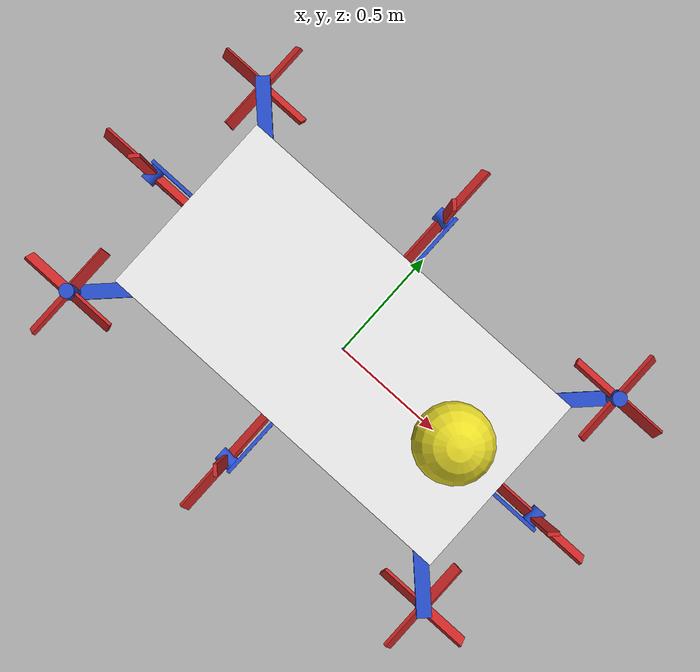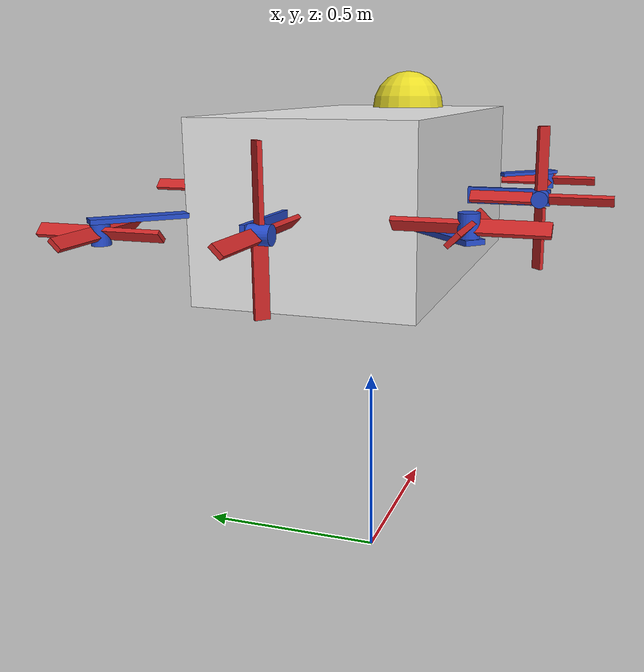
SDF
<?xml version="1.0"?>
<sdf version="1.5">

	<model name="Arihant_AUV">

		<!-- Define the initial pose of the AUV to start the simulation -->
		<pose>0 0 1 0 0 0</pose>

		<!-- Define the specifications of the Main Body of the AUV -->
		<link name = 'main_body'>
			<pose>0 0 0 0 0 0</pose>
            <inertial>
                <mass>900</mass>
                <inertia>
                    <ixx>86.28907821859966</ixx>
                    <ixy>0</ixy>
                    <ixz>0</ixz>
                    <iyy>86.28907821859966</iyy>
                    <iyz>0</iyz>
                    <izz>5.026548245743671</izz>
                </inertia>
            </inertial>

			<visual name = "main_body_visual">
				<geometry>
					<box>
						<size>1 0.5 0.4</size>
					</box>
				</geometry>
				<material>
					<script>
						<name>Gazebo/White</name>
					</script>
				</material>
			</visual>

			<collision name = "main_body_collision">
				<geometry>
					<box>
						<size>1.5 0.8 0.8</size>
					</box>
				</geometry>
			</collision>

			<!-- Propeller connector 1 -->
			<visual name = "spacer_1_forward_right_box">
				<pose>0 -0.35 0 0 0 -1.57</pose>
				<geometry>
					<box>
						<size>0.2 0.01 0.04</size>
					</box>
				</geometry>
				<material>
					<script>
						<name>Gazebo/Blue</name>
					</script>
				</material>
			</visual>
			<visual name = "spacer_1_forward_right_cyl">
				<pose>-0.025 -0.43 0 0 -1.57 0</pose>
				<geometry>
					<cylinder>
						<length>0.05</length>
						<radius>0.02</radius>
					</cylinder>
				</geometry>
				<material>
					<script>
						<name>Gazebo/Blue</name>
					</script>
				</material>
			</visual>

			<!-- Propeller connector 2 -->
			<visual name = "spacer_2_forward_left_box">
				<pose>0 0.35 0 0 0 -1.57</pose>
				<geometry>
					<box>
						<size>0.2 0.01 0.04</size>
					</box>
				</geometry>
				<material>
					<script>
						<name>Gazebo/Blue</name>
					</script>
				</material>
			</visual>
			<visual name = "spacer_2_forward_left_cyl">
				<pose>-0.025 0.43 0 0 -1.57 0</pose>
				<geometry>
					<cylinder>
						<length>0.05</length>
						<radius>0.02</radius>
					</cylinder>
				</geometry>
				<material>
					<script>
						<name>Gazebo/Blue</name>
					</script>
				</material>
			</visual>

			<!-- Propeller connector 3 -->
			<visual name = "spacer_3_left_box">
				<pose>-0.6 0.025 0 0 0 0</pose>
				<geometry>
					<box>
						<size>0.2 0.01 0.04</size>
					</box>
				</geometry>
				<material>
					<script>
						<name>Gazebo/Blue</name>
					</script>
				</material>
			</visual>
			<visual name = "spacer_3_left_cyl">
				<pose>-0.68 0 0 1.57 0 0</pose>
				<geometry>
					<cylinder>
						<length>0.05</length>
						<radius>0.02</radius>
					</cylinder>
				</geometry>
				<material>
					<script>
						<name>Gazebo/Blue</name>
					</script>
				</material>
			</visual>

			<!-- Propeller connector 4 -->
			<visual name = "spacer_4_right_box">
				<pose>0.6 -0.025 0 0 0 0</pose>
				<geometry>
					<box>
						<size>0.2 0.01 0.04</size>
					</box>
				</geometry>
				<material>
					<script>
						<name>Gazebo/Blue</name>
					</script>
				</material>
			</visual>
			<visual name = "spacer_4_right_cyl">
				<pose>0.68 0 0 -1.57 0 0</pose>
				<geometry>
					<cylinder>
						<length>0.05</length>
						<radius>0.02</radius>
					</cylinder>
				</geometry>
				<material>
					<script>
						<name>Gazebo/Blue</name>
					</script>
				</material>
			</visual>

			<!-- Propeller connector 5 -->
			<visual name = "spacer_5_up_NE_box">
				<pose>0.57 -0.32 0 1.57 0 -0.785</pose>
				<geometry>
					<box>
						<size>0.2 0.01 0.04</size>
					</box>
				</geometry>
				<material>
					<script>
						<name>Gazebo/Blue</name>
					</script>
				</material>
			</visual>
			<visual name = "spacer_5_up_NE_cyl">
				<pose>0.625 -0.375 -0.025 0 0 0</pose>
				<geometry>
					<cylinder>
						<length>0.05</length>
						<radius>0.02</radius>
					</cylinder>
				</geometry>
				<material>
					<script>
						<name>Gazebo/Blue</name>
					</script>
				</material>
			</visual>

			<!-- Propeller connector 6 -->
			<visual name = "spacer_6_up_SW_box">
				<pose>-0.57 0.32 0 1.57 0 -0.785</pose>
				<geometry>
					<box>
						<size>0.2 0.01 0.04</size>
					</box>
				</geometry>
				<material>
					<script>
						<name>Gazebo/Blue</name>
					</script>
				</material>
			</visual>
			<visual name = "spacer_6_up_SW_cyl">
				<pose>-0.625 0.375 -0.025 0 0 0</pose>
				<geometry>
					<cylinder>
						<length>0.05</length>
						<radius>0.02</radius>
					</cylinder>
				</geometry>
				<material>
					<script>
						<name>Gazebo/Blue</name>
					</script>
				</material>
			</visual>

			<!-- Propeller connector 7 -->
			<visual name = "spacer_7_down_NW_box">
				<pose>0.57 0.32 0 1.57 0 0.785</pose>
				<geometry>
					<box>
						<size>0.2 0.01 0.04</size>
					</box>
				</geometry>
				<material>
					<script>
						<name>Gazebo/Blue</name>
					</script>
				</material>
			</visual>
			<visual name = "spacer_7_down_NW_cyl">
				<pose>0.625 0.375 0.025 0 0 0</pose>
				<geometry>
					<cylinder>
						<length>0.05</length>
						<radius>0.02</radius>
					</cylinder>
				</geometry>
				<material>
					<script>
						<name>Gazebo/Blue</name>
					</script>
				</material>
			</visual>

			<!-- Propeller connector 8 -->
			<visual name = "spacer_8_down_SE_box">
				<pose>-0.57 -0.32 0 1.57 0 0.785</pose>
				<geometry>
					<box>
						<size>0.2 0.01 0.04</size>
					</box>
				</geometry>
				<material>
					<script>
						<name>Gazebo/Blue</name>
					</script>
				</material>
			</visual>
			<visual name = "spacer_8_down_SE_cyl">
				<pose>-0.625 -0.375 0.025 0 0 0</pose>
				<geometry>
					<cylinder>
						<length>0.05</length>
						<radius>0.02</radius>
					</cylinder>
				</geometry>
				<material>
					<script>
						<name>Gazebo/Blue</name>
					</script>
				</material>
			</visual>
		</link>

		<link name = "propeller_forward_right">
			<pose>-0.025 -0.43 0 0 0 0</pose>
			<inertial>
				<mass>10</mass>
				<inertia>
					<ixx>0.25999415237916674</ixx>
					<ixy>0</ixy>
					<ixz>0</ixz>
					<iyy>0.25999415237916674</iyy>
					<iyz>0</iyz>
					<izz>0.5091666666666668</izz>
				</inertia>
			</inertial>

			<visual name='blade1_visual'>
				<pose>0 -0.095 0 -0.785 0 1.5707</pose>
				<geometry>
					<box>
						<size>0.15 0.01 0.03</size>
					</box>
				</geometry>
				<material>
					<script>
						<name>Gazebo/Red</name>
					</script>
				</material>
			</visual>

			<collision name="blade1_collision">
				<pose>0 -0.095 0 -0.785 0 1.5707</pose>
				<geometry>
					<box>
						<size>0.15 0.01 0.03</size>
					</box>
				</geometry>
			</collision>

			<visual name='blade2_visual'>
				<pose>0 0 0.095 -0.785 1.5707 1.5707</pose>
				<geometry>
					<box>
						<size>0.15 0.01 0.03</size>
					</box>
				</geometry>
				<material>
					<script>
						<name>Gazebo/Red</name>
					</script>
				</material>
			</visual>

			<collision name="blade2_collision">
				<pose>0 0 0.095 -0.785 1.5707 1.5707</pose>
				<geometry>
					<box>
						<size>0.15 0.01 0.03</size>
					</box>
				</geometry>
			</collision>

			<visual name='blade3_visual'>
				<pose>0 0.095 0 -0.785 0 -1.5707</pose>
				<geometry>
					<box>
						<size>0.15 0.01 0.03</size>
					</box>
				</geometry>
				<material>
					<script>
						<name>Gazebo/Red</name>
					</script>
				</material>
			</visual>

			<collision name="blade3_collision">
				<pose>0 0.095 0 -0.785 0 -1.5707</pose>
				<geometry>
					<box>
						<size>0.15 0.01 0.03</size>
					</box>
				</geometry>
			</collision>

			<visual name='blade4_visual'>
				<pose>0 0 -0.095 -0.785 -1.5707 1.5707</pose>
				<geometry>
					<box>
						<size>0.15 0.01 0.03</size>
					</box>
				</geometry>
				<material>
					<script>
						<name>Gazebo/Red</name>
					</script>
				</material>
			</visual>

			<collision name="blade4_collision">
				<pose>0 0 -0.095 -0.785 -1.5707 1.5707</pose>
				<geometry>
					<box>
						<size>0.15 0.01 0.03</size>
					</box>
				</geometry>
			</collision>
		</link>

		<link name = "propeller_forward_left">
			<pose>-0.025 0.43 0 0 0 0</pose>
			<inertial>
				<mass>10</mass>
				<inertia>
					<ixx>0.25999415237916674</ixx>
					<ixy>0</ixy>
					<ixz>0</ixz>
					<iyy>0.25999415237916674</iyy>
					<iyz>0</iyz>
					<izz>0.5091666666666668</izz>
				</inertia>
			</inertial>

			<visual name='blade1_visual'>
				<pose>0 0.095 0 -0.785 0 -1.5707</pose>
				<geometry>
					<box>
						<size>0.15 0.01 0.03</size>
					</box>
				</geometry>
				<material>
					<script>
						<name>Gazebo/Red</name>
					</script>
				</material>
			</visual>

			<collision name="blade1_collision">
				<pose>0 0.095 0 -0.785 0 -1.5707</pose>
				<geometry>
					<box>
						<size>0.15 0.01 0.03</size>
					</box>
				</geometry>
			</collision>

			<visual name='blade2_visual'>
				<pose>0 0 0.095 -0.785 1.5707 1.5707</pose>
				<geometry>
					<box>
						<size>0.15 0.01 0.03</size>
					</box>
				</geometry>
				<material>
					<script>
						<name>Gazebo/Red</name>
					</script>
				</material>
			</visual>

			<collision name="blade2_collision">
				<pose>0 0 0.095 -0.785 1.5707 1.5707</pose>
				<geometry>
					<box>
						<size>0.15 0.01 0.03</size>
					</box>
				</geometry>
			</collision>

			<visual name='blade3_visual'>
				<pose>0 -0.095 0 -0.785 0 1.5707</pose>
				<geometry>
					<box>
						<size>0.15 0.01 0.03</size>
					</box>
				</geometry>
				<material>
					<script>
						<name>Gazebo/Red</name>
					</script>
				</material>
			</visual>

			<collision name="blade3_collision">
				<pose>0 -0.095 0 -0.785 0 1.5707</pose>
				<geometry>
					<box>
						<size>0.15 0.01 0.03</size>
					</box>
				</geometry>
			</collision>

			<visual name='blade4_visual'>
				<pose>0 0 -0.095 -0.785 -1.5707 1.5707</pose>
				<geometry>
					<box>
						<size>0.15 0.01 0.03</size>
					</box>
				</geometry>
				<material>
					<script>
						<name>Gazebo/Red</name>
					</script>
				</material>
			</visual>

			<collision name="blade4_collision">
				<pose>0 0 -0.095 -0.785 -1.5707 1.5707</pose>
				<geometry>
					<box>
						<size>0.15 0.01 0.03</size>
					</box>
				</geometry>
			</collision>
		</link>

		<link name = "propeller_right">
			<pose>0.68 0 0 0 0 0</pose>
			<inertial>
				<mass>10</mass>
				<inertia>
					<ixx>0.25999415237916674</ixx>
					<ixy>0</ixy>
					<ixz>0</ixz>
					<iyy>0.25999415237916674</iyy>
					<iyz>0</iyz>
					<izz>0.5091666666666668</izz>
				</inertia>
			</inertial>

			<visual name='blade1_visual'>
				<pose>0.095 0 0 0.785 0 0</pose>
				<geometry>
					<box>
						<size>0.15 0.01 0.03</size>
					</box>
				</geometry>
				<material>
					<script>
						<name>Gazebo/Red</name>
					</script>
				</material>
			</visual>

			<collision name="blade1_collision">
				<pose>0.095 0 0 0.785 0 0</pose>
				<geometry>
					<box>
						<size>0.15 0.01 0.03</size>
					</box>
				</geometry>
			</collision>

			<visual name='blade2_visual'>
				<pose>0 0 0.095 -0.785 1.5707 0</pose>
				<geometry>
					<box>
						<size>0.15 0.01 0.03</size>
					</box>
				</geometry>
				<material>
					<script>
						<name>Gazebo/Red</name>
					</script>
				</material>
			</visual>

			<collision name="blade2_collision">
				<pose>0 0 0.095 -0.785 1.5707 0</pose>
				<geometry>
					<box>
						<size>0.15 0.01 0.03</size>
					</box>
				</geometry>
			</collision>

			<visual name='blade3_visual'>
				<pose>-0.095 0 0 -0.785 0 0</pose>
				<geometry>
					<box>
						<size>0.15 0.01 0.03</size>
					</box>
				</geometry>
				<material>
					<script>
						<name>Gazebo/Red</name>
					</script>
				</material>
			</visual>

			<collision name="blade3_collision">
				<pose>-0.095 0 0 -0.785 0 0</pose>
				<geometry>
					<box>
						<size>0.15 0.01 0.03</size>
					</box>
				</geometry>
			</collision>

			<visual name='blade4_visual'>
				<pose>0 0 -0.095 -0.785 -1.5707 0</pose>
				<geometry>
					<box>
						<size>0.15 0.01 0.03</size>
					</box>
				</geometry>
				<material>
					<script>
						<name>Gazebo/Red</name>
					</script>
				</material>
			</visual>

			<collision name="blade4_collision">
				<pose>0 0 -0.095 -0.785 -1.5707 0</pose>
				<geometry>
					<box>
						<size>0.15 0.01 0.03</size>
					</box>
				</geometry>
			</collision>
		</link>

		<link name = "propeller_left">
			<pose>-0.68 0 0 0 0 0</pose>
			<inertial>
				<mass>10</mass>
				<inertia>
					<ixx>0.25999415237916674</ixx>
					<ixy>0</ixy>
					<ixz>0</ixz>
					<iyy>0.25999415237916674</iyy>
					<iyz>0</iyz>
					<izz>0.5091666666666668</izz>
				</inertia>
			</inertial>

			<visual name='blade1_visual'>
				<pose>-0.095 0 0 -0.785 0 0</pose>
				<geometry>
					<box>
						<size>0.15 0.01 0.03</size>
					</box>
				</geometry>
				<material>
					<script>
						<name>Gazebo/Red</name>
					</script>
				</material>
			</visual>

			<collision name="blade1_collision">
				<pose>-0.095 0 0 -0.785 0 0</pose>
				<geometry>
					<box>
						<size>0.15 0.01 0.03</size>
					</box>
				</geometry>
			</collision>

			<visual name='blade2_visual'>
				<pose>0 0 0.095 0.785 -1.5707 0</pose>
				<geometry>
					<box>
						<size>0.15 0.01 0.03</size>
					</box>
				</geometry>
				<material>
					<script>
						<name>Gazebo/Red</name>
					</script>
				</material>
			</visual>

			<collision name="blade2_collision">
				<pose>0 0 0.095 0.785 -1.5707 0</pose>
				<geometry>
					<box>
						<size>0.15 0.01 0.03</size>
					</box>
				</geometry>
			</collision>

			<visual name='blade3_visual'>
				<pose>0.095 0 0 0.785 0 0</pose>
				<geometry>
					<box>
						<size>0.15 0.01 0.03</size>
					</box>
				</geometry>
				<material>
					<script>
						<name>Gazebo/Red</name>
					</script>
				</material>
			</visual>

			<collision name="blade3_collision">
				<pose>0.095 0 0 0.785 0 0</pose>
				<geometry>
					<box>
						<size>0.15 0.01 0.03</size>
					</box>
				</geometry>
			</collision>

			<visual name='blade4_visual'>
				<pose>0 0 -0.085 0.785 1.5707 0</pose>
				<geometry>
					<box>
						<size>0.15 0.01 0.03</size>
					</box>
				</geometry>
				<material>
					<script>
						<name>Gazebo/Red</name>
					</script>
				</material>
			</visual>

			<collision name="blade4_collision">
				<pose>0 -0 -0.085 0.785 1.5707 0</pose>
				<geometry>
					<box>
						<size>0.15 0.01 0.03</size>
					</box>
				</geometry>
			</collision>
		</link>

		<link name = "propeller_up_NE">
			<pose>0.627 -0.377 -0.025 0 0 0</pose>
			<inertial>
				<mass>10</mass>
				<inertia>
					<ixx>0.25999415237916674</ixx>
					<ixy>0</ixy>
					<ixz>0</ixz>
					<iyy>0.25999415237916674</iyy>
					<iyz>0</iyz>
					<izz>0.5091666666666668</izz>
				</inertia>
			</inertial>

			<visual name='blade1_visual'>
				<pose>0.067165 0 0 0.785 0 0</pose>
				<geometry>
					<box>
						<size>0.15 0.01 0.03</size>
					</box>
				</geometry>
				<material>
					<script>
						<name>Gazebo/Red</name>
					</script>
				</material>
			</visual>

			<collision name="blade1_collision">
				<pose>0.067165 0 0 0.785 0 0</pose>
				<geometry>
					<box>
						<size>0.15 0.01 0.03</size>
					</box>
				</geometry>
			</collision>

			<visual name='blade2_visual'>
				<pose>0 0.067165 0 0.785 0 1.5707</pose>
				<geometry>
					<box>
						<size>0.15 0.01 0.03</size>
					</box>
				</geometry>
				<material>
					<script>
						<name>Gazebo/Red</name>
					</script>
				</material>
			</visual>

			<collision name="blade2_collision">
				<pose>0 0.067165 0 0.785 0 1.5707</pose>
				<geometry>
					<box>
						<size>0.15 0.01 0.03</size>
					</box>
				</geometry>
			</collision>

			<visual name='blade3_visual'>
				<pose>-0.067165 0 0 -0.785 0 0</pose>
				<geometry>
					<box>
						<size>0.15 0.01 0.03</size>
					</box>
				</geometry>
				<material>
					<script>
						<name>Gazebo/Red</name>
					</script>
				</material>
			</visual>

			<collision name="blade3_collision">
				<pose>-0.067165 0 0 -0.785 0 0</pose>
				<geometry>
					<box>
						<size>0.15 0.01 0.03</size>
					</box>
				</geometry>
			</collision>

			<visual name='blade4_visual'>
				<pose>0 -0.067165 0 0.785 0 -1.5707</pose>
				<geometry>
					<box>
						<size>0.15 0.01 0.03</size>
					</box>
				</geometry>
				<material>
					<script>
						<name>Gazebo/Red</name>
					</script>
				</material>
			</visual>

			<collision name="blade4_collision">
				<pose>0 -0.067165 0 0.785 0 -1.5707</pose>
				<geometry>
					<box>
						<size>0.15 0.01 0.03</size>
					</box>
				</geometry>
			</collision>
		</link>

		<link name = "propeller_up_SW">
			<pose>-0.627 0.377 -0.025 0 0 0</pose>
			<inertial>
				<mass>10</mass>
				<inertia>
					<ixx>0.25999415237916674</ixx>
					<ixy>0</ixy>
					<ixz>0</ixz>
					<iyy>0.25999415237916674</iyy>
					<iyz>0</iyz>
					<izz>0.5091666666666668</izz>
				</inertia>
			</inertial>

			<visual name='blade1_visual'>
				<pose>-0.067165 0 0 -0.785 0 0</pose>
				<geometry>
					<box>
						<size>0.15 0.01 0.03</size>
					</box>
				</geometry>
				<material>
					<script>
						<name>Gazebo/Red</name>
					</script>
				</material>
			</visual>

			<collision name="blade1_collision">
				<pose>-0.067165 0 0 -0.785 0 0</pose>
				<geometry>
					<box>
						<size>0.15 0.01 0.03</size>
					</box>
				</geometry>
			</collision>

			<visual name='blade2_visual'>
				<pose>0 -0.067165 0 -0.785 0 1.5707</pose>
				<geometry>
					<box>
						<size>0.15 0.01 0.03</size>
					</box>
				</geometry>
				<material>
					<script>
						<name>Gazebo/Red</name>
					</script>
				</material>
			</visual>

			<collision name="blade2_collision">
				<pose>0 -0.067165 0 -0.785 0 1.5707</pose>
				<geometry>
					<box>
						<size>0.15 0.01 0.03</size>
					</box>
				</geometry>
			</collision>

			<visual name='blade3_visual'>
				<pose>0.067165 0 0 0.785 0 0</pose>
				<geometry>
					<box>
						<size>0.15 0.01 0.03</size>
					</box>
				</geometry>
				<material>
					<script>
						<name>Gazebo/Red</name>
					</script>
				</material>
			</visual>

			<collision name="blade3_collision">
				<pose>0.067165 0 0 0.785 0 0</pose>
				<geometry>
					<box>
						<size>0.15 0.01 0.03</size>
					</box>
				</geometry>
			</collision>

			<visual name='blade4_visual'>
				<pose>0 0.067165 0 -0.785 0 -1.5707</pose>
				<geometry>
					<box>
						<size>0.15 0.01 0.03</size>
					</box>
				</geometry>
				<material>
					<script>
						<name>Gazebo/Red</name>
					</script>
				</material>
			</visual>

			<collision name="blade4_collision">
				<pose>0 0.067165 0 -0.785 0 -1.5707</pose>
				<geometry>
					<box>
						<size>0.15 0.01 0.03</size>
					</box>
				</geometry>
			</collision>
		</link>

		<link name = "propeller_down_NW">
			<pose>0.627 0.377 0.025 0 0 0</pose>
			<inertial>
				<mass>10</mass>
				<inertia>
					<ixx>0.25999415237916674</ixx>
					<ixy>0</ixy>
					<ixz>0</ixz>
					<iyy>0.25999415237916674</iyy>
					<iyz>0</iyz>
					<izz>0.5091666666666668</izz>
				</inertia>
			</inertial>

			<visual name='blade1_visual'>
				<pose>0.067165 0 0 -0.785 0 0</pose>
				<geometry>
					<box>
						<size>0.15 0.01 0.03</size>
					</box>
				</geometry>
				<material>
					<script>
						<name>Gazebo/Red</name>
					</script>
				</material>
			</visual>

			<collision name="blade1_collision">
				<pose>0.067165 0 0 -0.785 0 0</pose>
				<geometry>
					<box>
						<size>0.15 0.01 0.03</size>
					</box>
				</geometry>
			</collision>

			<visual name='blade2_visual'>
				<pose>0 -0.067165 -0 0.785 0 -1.5707</pose>
				<geometry>
					<box>
						<size>0.15 0.01 0.03</size>
					</box>
				</geometry>
				<material>
					<script>
						<name>Gazebo/Red</name>
					</script>
				</material>
			</visual>

			<collision name="blade2_collision">
				<pose>0 -0.067165 -0 0.785 0 -1.5707</pose>
				<geometry>
					<box>
						<size>0.15 0.01 0.03</size>
					</box>
				</geometry>
			</collision>

			<visual name='blade3_visual'>
				<pose>-0.067165 0 0 0.785 0 0</pose>
				<geometry>
					<box>
						<size>0.15 0.01 0.03</size>
					</box>
				</geometry>
				<material>
					<script>
						<name>Gazebo/Red</name>
					</script>
				</material>
			</visual>

			<collision name="blade3_collision">
				<pose>-0.067165 0 0 0.785 0 0</pose>
				<geometry>
					<box>
						<size>0.15 0.01 0.03</size>
					</box>
				</geometry>
			</collision>

			<visual name='blade4_visual'>
				<pose>0 0.067165 0 -0.785 0 1.5707</pose>
				<geometry>
					<box>
						<size>0.15 0.01 0.03</size>
					</box>
				</geometry>
				<material>
					<script>
						<name>Gazebo/Red</name>
					</script>
				</material>
			</visual>

			<collision name="blade4_collision">
				<pose>0 0.067165 0 -0.785 0 1.5707</pose>
				<geometry>
					<box>
						<size>0.15 0.01 0.03</size>
					</box>
				</geometry>
			</collision>
		</link>

		<link name = "propeller_down_SE">
			<pose>-0.627 -0.377 0.025 0 0 0</pose>
			<inertial>
				<mass>10</mass>
				<inertia>
					<ixx>0.25999415237916674</ixx>
					<ixy>0</ixy>
					<ixz>0</ixz>
					<iyy>0.25999415237916674</iyy>
					<iyz>0</iyz>
					<izz>0.5091666666666668</izz>
				</inertia>
			</inertial>

			<visual name='blade1_visual'>
				<pose>-0.067165 0 0 0.785 0 0</pose>
				<geometry>
					<box>
						<size>0.15 0.01 0.03</size>
					</box>
				</geometry>
				<material>
					<script>
						<name>Gazebo/Red</name>
					</script>
				</material>
			</visual>

			<collision name="blade1_collision">
				<pose>-0.067165 0 0 0.785 0 0</pose>
				<geometry>
					<box>
						<size>0.15 0.01 0.03</size>
					</box>
				</geometry>
			</collision>

			<visual name='blade2_visual'>
				<pose>0 0.067165 0 0.785 0 -1.5707</pose>
				<geometry>
					<box>
						<size>0.15 0.01 0.03</size>
					</box>
				</geometry>
				<material>
					<script>
						<name>Gazebo/Red</name>
					</script>
				</material>
			</visual>

			<collision name="blade2_collision">
				<pose>0 0.067165 0 0.785 0 -1.5707</pose>
				<geometry>
					<box>
						<size>0.15 0.01 0.03</size>
					</box>
				</geometry>
			</collision>

			<visual name='blade3_visual'>
				<pose>0.067165 0 0 -0.785 0 0</pose>
				<geometry>
					<box>
						<size>0.15 0.01 0.03</size>
					</box>
				</geometry>
				<material>
					<script>
						<name>Gazebo/Red</name>
					</script>
				</material>
			</visual>

			<collision name="blade3_collision">
				<pose>0.067165 0 0 -0.785 0 0</pose>
				<geometry>
					<box>
						<size>0.15 0.01 0.03</size>
					</box>
				</geometry>
			</collision>

			<visual name='blade4_visual'>
				<pose>0 -0.067165 0 0.785 0 1.5707</pose>
				<geometry>
					<box>
						<size>0.15 0.01 0.03</size>
					</box>
				</geometry>
				<material>
					<script>
						<name>Gazebo/Red</name>
					</script>
				</material>
			</visual>

			<collision name="blade4_collision">
				<pose>0 -0.067165 0 0.785 0 1.5707</pose>
				<geometry>
					<box>
						<size>0.15 0.01 0.03</size>
					</box>
				</geometry>
			</collision>
		</link>

		<joint name='spinning_joint_fwd_1' type='revolute'>
			<parent>main_body</parent>
			<child>propeller_forward_right</child>
			<axis>
				<xyz>1 0 0</xyz>
				<use_parent_model_frame>1</use_parent_model_frame>
				<limit>
					<lower>-1e+12</lower>
					<upper>1e+12</upper>
					<effort>-1</effort>
					<velocity>-1</velocity>
				</limit>
			</axis>
		</joint>

		<joint name='spinning_joint_fwd_2' type='revolute'>
			<parent>main_body</parent>
			<child>propeller_forward_left</child>
			<axis>
				<xyz>1 0 0</xyz>
				<use_parent_model_frame>1</use_parent_model_frame>
				<limit>
					<lower>-1e+12</lower>
					<upper>1e+12</upper>
					<effort>-1</effort>
					<velocity>-1</velocity>
				</limit>
			</axis>
		</joint>

		<joint name='spinning_joint_right' type='revolute'>
			<parent>main_body</parent>
			<child>propeller_right</child>
			<axis>
				<xyz>0 1 0</xyz>
				<use_parent_model_frame>1</use_parent_model_frame>
				<limit>
					<lower>-1e+12</lower>
					<upper>1e+12</upper>
					<effort>-1</effort>
					<velocity>-1</velocity>
				</limit>
			</axis>
		</joint>

		<joint name='spinning_joint_left' type='revolute'>
			<parent>main_body</parent>
			<child>propeller_left</child>
			<axis>
				<xyz>0 1 0</xyz>
				<use_parent_model_frame>1</use_parent_model_frame>
				<limit>
					<lower>-1e+12</lower>
					<upper>1e+12</upper>
					<effort>-1</effort>
					<velocity>-1</velocity>
				</limit>
			</axis>
		</joint>

		<joint name='spinning_joint_up_NE' type='revolute'>
			<parent>main_body</parent>
			<child>propeller_up_NE</child>
			<axis>
				<xyz>0 0 1</xyz>
				<use_parent_model_frame>1</use_parent_model_frame>
				<limit>
					<lower>-1e+12</lower>
					<upper>1e+12</upper>
					<effort>-1</effort>
					<velocity>-1</velocity>
				</limit>
			</axis>
		</joint>

		<joint name='spinning_joint_up_SW' type='revolute'>
			<parent>main_body</parent>
			<child>propeller_up_SW</child>
			<axis>
				<xyz>0 0 1</xyz>
				<use_parent_model_frame>1</use_parent_model_frame>
				<limit>
					<lower>-1e+12</lower>
					<upper>1e+12</upper>
					<effort>-1</effort>
					<velocity>-1</velocity>
				</limit>
			</axis>
		</joint>

		<joint name='spinning_joint_down_NW' type='revolute'>
			<parent>main_body</parent>
			<child>propeller_down_NW</child>
			<axis>
				<xyz>0 0 1</xyz>
				<use_parent_model_frame>1</use_parent_model_frame>
				<limit>
					<lower>-1e+12</lower>
					<upper>1e+12</upper>
					<effort>-1</effort>
					<velocity>-1</velocity>
				</limit>
			</axis>
		</joint>

		<joint name='spinning_joint_down_SE' type='revolute'>
			<parent>main_body</parent>
			<child>propeller_down_SE</child>
			<axis>
				<xyz>0 0 1</xyz>
				<use_parent_model_frame>1</use_parent_model_frame>
				<limit>
					<lower>-1e+12</lower>
					<upper>1e+12</upper>
					<effort>-1</effort>
					<velocity>-1</velocity>
				</limit>
			</axis>
		</joint>

		<plugin name="submarine_propeller_1" filename="libLiftDragPlugin.so">
			<air_density>1000</air_density><cla>1.2535816618911175</cla><cla_stall>-1.4326647564469914</cla_stall><cda>0</cda><cda_stall>1.4326647564469914</cda_stall><alpha_stall>1.396</alpha_stall><a0>0</a0>
			<area>0.27637</area>
			<upward>0 -0.7071067811865476 -0.7071067811865475</upward>
			<forward>0 -0.7071067811865475 0.7071067811865476</forward>
			<link_name>propeller_forward_right</link_name>
			<cp>0.35 0 0</cp>
		</plugin>

		<plugin name="submarine_propeller_2" filename="libLiftDragPlugin.so">
			<air_density>1000</air_density><cla>1.2535816618911175</cla><cla_stall>-1.4326647564469914</cla_stall><cda>0</cda><cda_stall>1.4326647564469914</cda_stall><alpha_stall>1.396</alpha_stall><a0>0</a0>
			<area>0.27637</area>
			<upward>-0.7071067811865475 0 -0.7071067811865476</upward>
			<forward>-0.7071067811865476 0 0.7071067811865475</forward>
			<link_name>propeller_forward_right</link_name>
			<cp>0 -0.35 0</cp>
		</plugin>

		<plugin name="submarine_propeller_3" filename="libLiftDragPlugin.so">
			<air_density>1000</air_density><cla>1.2535816618911175</cla><cla_stall>-1.4326647564469914</cla_stall><cda>0</cda><cda_stall>1.4326647564469914</cda_stall><alpha_stall>1.396</alpha_stall><a0>0</a0>
			<area>0.27637</area>
			<upward>0 0.7071067811865475 -0.7071067811865476</upward>
			<forward>0 -0.7071067811865476 -0.7071067811865475</forward>
			<link_name>propeller_forward_right</link_name>
			<cp>-0.35 0 0</cp>
		</plugin>

		<plugin name="submarine_propeller_4" filename="libLiftDragPlugin.so">
			<air_density>1000</air_density><cla>1.2535816618911175</cla><cla_stall>-1.4326647564469914</cla_stall><cda>0</cda><cda_stall>1.4326647564469914</cda_stall><alpha_stall>1.396</alpha_stall><a0>0</a0>
			<area>0.27637</area>
			<upward>0.7071067811865476 0 -0.7071067811865475</upward>
			<forward>0.7071067811865475 0 0.7071067811865476</forward>
			<link_name>propeller_forward_right</link_name>
			<cp>0 0.35 0</cp>
		</plugin>

		<plugin name="submarine_propeller_5" filename="libLiftDragPlugin.so">
			<air_density>1000</air_density><cla>1.2535816618911175</cla><cla_stall>-1.4326647564469914</cla_stall><cda>0</cda><cda_stall>1.4326647564469914</cda_stall><alpha_stall>1.396</alpha_stall><a0>0</a0>
			<area>0.27637</area>
			<upward>0 -0.7071067811865476 -0.7071067811865475</upward>
			<forward>0 -0.7071067811865475 0.7071067811865476</forward>
			<link_name>propeller_forward_left</link_name>
			<cp>0.35 0 0</cp>
		</plugin>

		<plugin name="submarine_propeller_6" filename="libLiftDragPlugin.so">
			<air_density>1000</air_density><cla>1.2535816618911175</cla><cla_stall>-1.4326647564469914</cla_stall><cda>0</cda><cda_stall>1.4326647564469914</cda_stall><alpha_stall>1.396</alpha_stall><a0>0</a0>
			<area>0.27637</area>
			<upward>-0.7071067811865475 0 -0.7071067811865476</upward>
			<forward>-0.7071067811865476 0 0.7071067811865475</forward>
			<link_name>propeller_forward_left</link_name>
			<cp>0 -0.35 0</cp>
		</plugin>

		<plugin name="submarine_propeller_7" filename="libLiftDragPlugin.so">
			<air_density>1000</air_density><cla>1.2535816618911175</cla><cla_stall>-1.4326647564469914</cla_stall><cda>0</cda><cda_stall>1.4326647564469914</cda_stall><alpha_stall>1.396</alpha_stall><a0>0</a0>
			<area>0.27637</area>
			<upward>0 0.7071067811865475 -0.7071067811865476</upward>
			<forward>0 -0.7071067811865476 -0.7071067811865475</forward>
			<link_name>propeller_forward_left</link_name>
			<cp>-0.35 0 0</cp>
		</plugin>

		<plugin name="submarine_propeller_8" filename="libLiftDragPlugin.so">
			<air_density>1000</air_density><cla>1.2535816618911175</cla><cla_stall>-1.4326647564469914</cla_stall><cda>0</cda><cda_stall>1.4326647564469914</cda_stall><alpha_stall>1.396</alpha_stall><a0>0</a0>
			<area>0.27637</area>
			<upward>0.7071067811865476 0 -0.7071067811865475</upward>
			<forward>0.7071067811865475 0 0.7071067811865476</forward>
			<link_name>propeller_forward_left</link_name>
			<cp>0 0.35 0</cp>
		</plugin>

		<plugin name="submarine_propeller_9" filename="libLiftDragPlugin.so">
			<air_density>1000</air_density><cla>1.2535816618911175</cla><cla_stall>-1.4326647564469914</cla_stall><cda>0</cda><cda_stall>1.4326647564469914</cda_stall><alpha_stall>1.396</alpha_stall><a0>0</a0>
			<area>0.27637</area>
			<upward>0 -0.7071067811865476 -0.7071067811865475</upward>
			<forward>0 -0.7071067811865475 0.7071067811865476</forward>
			<link_name>propeller_right</link_name>
			<cp>0.35 0 0</cp>
		</plugin>

		<plugin name="submarine_propeller_10" filename="libLiftDragPlugin.so">
			<air_density>1000</air_density><cla>1.2535816618911175</cla><cla_stall>-1.4326647564469914</cla_stall><cda>0</cda><cda_stall>1.4326647564469914</cda_stall><alpha_stall>1.396</alpha_stall><a0>0</a0>
			<area>0.27637</area>
			<upward>-0.7071067811865475 0 -0.7071067811865476</upward>
			<forward>-0.7071067811865476 0 0.7071067811865475</forward>
			<link_name>propeller_right</link_name>
			<cp>0 -0.35 0</cp>
		</plugin>

		<plugin name="submarine_propeller_11" filename="libLiftDragPlugin.so">
			<air_density>1000</air_density><cla>1.2535816618911175</cla><cla_stall>-1.4326647564469914</cla_stall><cda>0</cda><cda_stall>1.4326647564469914</cda_stall><alpha_stall>1.396</alpha_stall><a0>0</a0>
			<area>0.27637</area>
			<upward>0 0.7071067811865475 -0.7071067811865476</upward>
			<forward>0 -0.7071067811865476 -0.7071067811865475</forward>
			<link_name>propeller_right</link_name>
			<cp>-0.35 0 0</cp>
		</plugin>

		<plugin name="submarine_propeller_12" filename="libLiftDragPlugin.so">
			<air_density>1000</air_density><cla>1.2535816618911175</cla><cla_stall>-1.4326647564469914</cla_stall><cda>0</cda><cda_stall>1.4326647564469914</cda_stall><alpha_stall>1.396</alpha_stall><a0>0</a0>
			<area>0.27637</area>
			<upward>0.7071067811865476 0 -0.7071067811865475</upward>
			<forward>0.7071067811865475 0 0.7071067811865476</forward>
			<link_name>propeller_right</link_name>
			<cp>0 0.35 0</cp>
		</plugin>

		<plugin name="submarine_propeller_13" filename="libLiftDragPlugin.so">
			<air_density>1000</air_density><cla>1.2535816618911175</cla><cla_stall>-1.4326647564469914</cla_stall><cda>0</cda><cda_stall>1.4326647564469914</cda_stall><alpha_stall>1.396</alpha_stall><a0>0</a0>
			<area>0.27637</area>
			<upward>0 -0.7071067811865476 -0.7071067811865475</upward>
			<forward>0 -0.7071067811865475 0.7071067811865476</forward>
			<link_name>propeller_left</link_name>
			<cp>0.35 0 0</cp>
		</plugin>

		<plugin name="submarine_propeller_14" filename="libLiftDragPlugin.so">
			<air_density>1000</air_density><cla>1.2535816618911175</cla><cla_stall>-1.4326647564469914</cla_stall><cda>0</cda><cda_stall>1.4326647564469914</cda_stall><alpha_stall>1.396</alpha_stall><a0>0</a0>
			<area>0.27637</area>
			<upward>-0.7071067811865475 0 -0.7071067811865476</upward>
			<forward>-0.7071067811865476 0 0.7071067811865475</forward>
			<link_name>propeller_left</link_name>
			<cp>0 -0.35 0</cp>
		</plugin>

		<plugin name="submarine_propeller_15" filename="libLiftDragPlugin.so">
			<air_density>1000</air_density><cla>1.2535816618911175</cla><cla_stall>-1.4326647564469914</cla_stall><cda>0</cda><cda_stall>1.4326647564469914</cda_stall><alpha_stall>1.396</alpha_stall><a0>0</a0>
			<area>0.27637</area>
			<upward>0 0.7071067811865475 -0.7071067811865476</upward>
			<forward>0 -0.7071067811865476 -0.7071067811865475</forward>
			<link_name>propeller_left</link_name>
			<cp>-0.35 0 0</cp>
		</plugin>

		<plugin name="submarine_propeller_16" filename="libLiftDragPlugin.so">
			<air_density>1000</air_density><cla>1.2535816618911175</cla><cla_stall>-1.4326647564469914</cla_stall><cda>0</cda><cda_stall>1.4326647564469914</cda_stall><alpha_stall>1.396</alpha_stall><a0>0</a0>
			<area>0.27637</area>
			<upward>0.7071067811865476 0 -0.7071067811865475</upward>
			<forward>0.7071067811865475 0 0.7071067811865476</forward>
			<link_name>propeller_left</link_name>
			<cp>0 0.35 0</cp>
		</plugin>

		<plugin name="submarine_propeller_17" filename="libLiftDragPlugin.so">
			<air_density>1000</air_density><cla>1.2535816618911175</cla><cla_stall>-1.4326647564469914</cla_stall><cda>0</cda><cda_stall>1.4326647564469914</cda_stall><alpha_stall>1.396</alpha_stall><a0>0</a0>
			<area>0.27637</area>
			<upward>0 -0.7071067811865476 -0.7071067811865475</upward>
			<forward>0 -0.7071067811865475 0.7071067811865476</forward>
			<link_name>propeller_up_NE</link_name>
			<cp>0.35 0 0</cp>
		</plugin>

		<plugin name="submarine_propeller_18" filename="libLiftDragPlugin.so">
			<air_density>1000</air_density><cla>1.2535816618911175</cla><cla_stall>-1.4326647564469914</cla_stall><cda>0</cda><cda_stall>1.4326647564469914</cda_stall><alpha_stall>1.396</alpha_stall><a0>0</a0>
			<area>0.27637</area>
			<upward>-0.7071067811865475 0 -0.7071067811865476</upward>
			<forward>-0.7071067811865476 0 0.7071067811865475</forward>
			<link_name>propeller_up_NE</link_name>
			<cp>0 -0.35 0</cp>
		</plugin>

		<plugin name="submarine_propeller_19" filename="libLiftDragPlugin.so">
			<air_density>1000</air_density><cla>1.2535816618911175</cla><cla_stall>-1.4326647564469914</cla_stall><cda>0</cda><cda_stall>1.4326647564469914</cda_stall><alpha_stall>1.396</alpha_stall><a0>0</a0>
			<area>0.27637</area>
			<upward>0 0.7071067811865475 -0.7071067811865476</upward>
			<forward>0 -0.7071067811865476 -0.7071067811865475</forward>
			<link_name>propeller_up_NE</link_name>
			<cp>-0.35 0 0</cp>
		</plugin>

		<plugin name="submarine_propeller_20" filename="libLiftDragPlugin.so">
			<air_density>1000</air_density><cla>1.2535816618911175</cla><cla_stall>-1.4326647564469914</cla_stall><cda>0</cda><cda_stall>1.4326647564469914</cda_stall><alpha_stall>1.396</alpha_stall><a0>0</a0>
			<area>0.27637</area>
			<upward>0.7071067811865476 0 -0.7071067811865475</upward>
			<forward>0.7071067811865475 0 0.7071067811865476</forward>
			<link_name>propeller_up_NE</link_name>
			<cp>0 0.35 0</cp>
		</plugin>

		<plugin name="submarine_propeller_21" filename="libLiftDragPlugin.so">
			<air_density>1000</air_density><cla>1.2535816618911175</cla><cla_stall>-1.4326647564469914</cla_stall><cda>0</cda><cda_stall>1.4326647564469914</cda_stall><alpha_stall>1.396</alpha_stall><a0>0</a0>
			<area>0.27637</area>
			<upward>0 -0.7071067811865476 -0.7071067811865475</upward>
			<forward>0 -0.7071067811865475 0.7071067811865476</forward>
			<link_name>propeller_up_SW</link_name>
			<cp>0.35 0 0</cp>
		</plugin>

		<plugin name="submarine_propeller_22" filename="libLiftDragPlugin.so">
			<air_density>1000</air_density><cla>1.2535816618911175</cla><cla_stall>-1.4326647564469914</cla_stall><cda>0</cda><cda_stall>1.4326647564469914</cda_stall><alpha_stall>1.396</alpha_stall><a0>0</a0>
			<area>0.27637</area>
			<upward>-0.7071067811865475 0 -0.7071067811865476</upward>
			<forward>-0.7071067811865476 0 0.7071067811865475</forward>
			<link_name>propeller_up_SW</link_name>
			<cp>0 -0.35 0</cp>
		</plugin>

		<plugin name="submarine_propeller_23" filename="libLiftDragPlugin.so">
			<air_density>1000</air_density><cla>1.2535816618911175</cla><cla_stall>-1.4326647564469914</cla_stall><cda>0</cda><cda_stall>1.4326647564469914</cda_stall><alpha_stall>1.396</alpha_stall><a0>0</a0>
			<area>0.27637</area>
			<upward>0 0.7071067811865475 -0.7071067811865476</upward>
			<forward>0 -0.7071067811865476 -0.7071067811865475</forward>
			<link_name>propeller_up_SW</link_name>
			<cp>-0.35 0 0</cp>
		</plugin>

		<plugin name="submarine_propeller_24" filename="libLiftDragPlugin.so">
			<air_density>1000</air_density><cla>1.2535816618911175</cla><cla_stall>-1.4326647564469914</cla_stall><cda>0</cda><cda_stall>1.4326647564469914</cda_stall><alpha_stall>1.396</alpha_stall><a0>0</a0>
			<area>0.27637</area>
			<upward>0.7071067811865476 0 -0.7071067811865475</upward>
			<forward>0.7071067811865475 0 0.7071067811865476</forward>
			<link_name>propeller_up_SW</link_name>
			<cp>0 0.35 0</cp>
		</plugin>

		<plugin name="submarine_propeller_25" filename="libLiftDragPlugin.so">
			<air_density>1000</air_density><cla>1.2535816618911175</cla><cla_stall>-1.4326647564469914</cla_stall><cda>0</cda><cda_stall>1.4326647564469914</cda_stall><alpha_stall>1.396</alpha_stall><a0>0</a0>
			<area>0.27637</area>
			<upward>0 -0.7071067811865476 -0.7071067811865475</upward>
			<forward>0 -0.7071067811865475 0.7071067811865476</forward>
			<link_name>propeller_down_NW</link_name>
			<cp>0.35 0 0</cp>
		</plugin>

		<plugin name="submarine_propeller_26" filename="libLiftDragPlugin.so">
			<air_density>1000</air_density><cla>1.2535816618911175</cla><cla_stall>-1.4326647564469914</cla_stall><cda>0</cda><cda_stall>1.4326647564469914</cda_stall><alpha_stall>1.396</alpha_stall><a0>0</a0>
			<area>0.27637</area>
			<upward>-0.7071067811865475 0 -0.7071067811865476</upward>
			<forward>-0.7071067811865476 0 0.7071067811865475</forward>
			<link_name>propeller_down_NW</link_name>
			<cp>0 -0.35 0</cp>
		</plugin>

		<plugin name="submarine_propeller_27" filename="libLiftDragPlugin.so">
			<air_density>1000</air_density><cla>1.2535816618911175</cla><cla_stall>-1.4326647564469914</cla_stall><cda>0</cda><cda_stall>1.4326647564469914</cda_stall><alpha_stall>1.396</alpha_stall><a0>0</a0>
			<area>0.27637</area>
			<upward>0 0.7071067811865475 -0.7071067811865476</upward>
			<forward>0 -0.7071067811865476 -0.7071067811865475</forward>
			<link_name>propeller_down_NW</link_name>
			<cp>-0.35 0 0</cp>
		</plugin>

		<plugin name="submarine_propeller_28" filename="libLiftDragPlugin.so">
			<air_density>1000</air_density><cla>1.2535816618911175</cla><cla_stall>-1.4326647564469914</cla_stall><cda>0</cda><cda_stall>1.4326647564469914</cda_stall><alpha_stall>1.396</alpha_stall><a0>0</a0>
			<area>0.27637</area>
			<upward>0.7071067811865476 0 -0.7071067811865475</upward>
			<forward>0.7071067811865475 0 0.7071067811865476</forward>
			<link_name>propeller_down_NW</link_name>
			<cp>0 0.35 0</cp>
		</plugin>

		<plugin name="submarine_propeller_29" filename="libLiftDragPlugin.so">
			<air_density>1000</air_density><cla>1.2535816618911175</cla><cla_stall>-1.4326647564469914</cla_stall><cda>0</cda><cda_stall>1.4326647564469914</cda_stall><alpha_stall>1.396</alpha_stall><a0>0</a0>
			<area>0.27637</area>
			<upward>0 -0.7071067811865476 -0.7071067811865475</upward>
			<forward>0 -0.7071067811865475 0.7071067811865476</forward>
			<link_name>propeller_down_SE</link_name>
			<cp>0.35 0 0</cp>
		</plugin>

		<plugin name="submarine_propeller_30" filename="libLiftDragPlugin.so">
			<air_density>1000</air_density><cla>1.2535816618911175</cla><cla_stall>-1.4326647564469914</cla_stall><cda>0</cda><cda_stall>1.4326647564469914</cda_stall><alpha_stall>1.396</alpha_stall><a0>0</a0>
			<area>0.27637</area>
			<upward>-0.7071067811865475 0 -0.7071067811865476</upward>
			<forward>-0.7071067811865476 0 0.7071067811865475</forward>
			<link_name>propeller_down_SE</link_name>
			<cp>0 -0.35 0</cp>
		</plugin>

		<plugin name="submarine_propeller_31" filename="libLiftDragPlugin.so">
			<air_density>1000</air_density><cla>1.2535816618911175</cla><cla_stall>-1.4326647564469914</cla_stall><cda>0</cda><cda_stall>1.4326647564469914</cda_stall><alpha_stall>1.396</alpha_stall><a0>0</a0>
			<area>0.27637</area>
			<upward>0 0.7071067811865475 -0.7071067811865476</upward>
			<forward>0 -0.7071067811865476 -0.7071067811865475</forward>
			<link_name>propeller_down_SE</link_name>
			<cp>-0.35 0 0</cp>
		</plugin>

		<plugin name="submarine_propeller_32" filename="libLiftDragPlugin.so">
			<air_density>1000</air_density><cla>1.2535816618911175</cla><cla_stall>-1.4326647564469914</cla_stall><cda>0</cda><cda_stall>1.4326647564469914</cda_stall><alpha_stall>1.396</alpha_stall><a0>0</a0>
			<area>0.27637</area>
			<upward>0.7071067811865476 0 -0.7071067811865475</upward>
			<forward>0.7071067811865475 0 0.7071067811865476</forward>
			<link_name>propeller_down_SE</link_name>
			<cp>0 0.35 0</cp>
		</plugin>

	    <!-- Camera -->
	    <link name="front_camera_link">
	    	<collision name = "front_camera_collision">
                <pose>0.35 0 0.2 0 0 0</pose>
	    		<geometry>
	    			<sphere>
                        <radius>0.1</radius>
                    </sphere>
	    		</geometry>
    		</collision>

	    	<visual name = "front_camera_visual">
                <pose>0.35 0 0.2 0 0 0</pose>
	    		<geometry>
	    			<sphere>
                        <radius>0.1</radius>
                    </sphere>
	    		</geometry>
				<material>
					<script>
						<name>Gazebo/Yellow</name>
					</script>
				</material>
    		</visual>

	    	<inertial>
	    		<mass>1e-5</mass>
	    		<inertia>
                    <ixx>1e-6</ixx>
                    <ixy>0</ixy>
                    <ixz>0</ixz>
                    <iyy>1e-6</iyy>
                    <iyz>0</iyz>
                    <izz>1e-6</izz>
                </inertia>
	    	</inertial>

			<sensor type="camera" name="front_camera">
				<update_rate>10.0</update_rate>
				<camera name="head">
					<horizontal_fov>1.3962634</horizontal_fov>
					<image>
						<width>800</width>
						<height>800</height>
						<format>R8G8B8</format>
					</image>
					<clip>
						<near>0.02</near>
						<far>300</far>
					</clip>

					<noise>
						<type>gaussian</type>
						<!-- Noise is sampled independently per pixel on each frame.
						That pixel's noise value is added to each of its color
						channels, which at that point lie in the range [0,1]. -->
						<mean>0.0</mean>
						<stddev>0.007</stddev>
					</noise>
				</camera>

				<plugin name="camera_controller" filename="libgazebo_ros_camera.so">
					<alwaysOn>true</alwaysOn>
					<updateRate>0.0</updateRate>
					<cameraName>arihant/front_camera</cameraName>
					<imageTopicName>image_raw</imageTopicName>
					<cameraInfoTopicName>camera_info</cameraInfoTopicName>
					<frameName>front_camera_link</frameName>
					<hackBaseline>0.07</hackBaseline>
					<distortionK1>0.0</distortionK1>
					<distortionK2>0.0</distortionK2>
					<distortionK3>0.0</distortionK3>
					<distortionT1>0.0</distortionT1>
					<distortionT2>0.0</distortionT2>
				</plugin>
			</sensor>
    	</link>

	    <joint name="camera_joint" type="fixed">
	    	<axis>
                <xyz>0 1 0</xyz>
            </axis>
            <pose>0.35 0 0.2 0 0 0</pose>
		    <parent>main_body</parent>
		    <child>front_camera_link</child>
	    </joint>

		<plugin name="buoyancy" filename="libBuoyancyPlugin.so">
			<fluid_density>1000</fluid_density>
            <link name = "main_body">
                <volume>10000</volume>
            </link>
		</plugin>
	</model>
</sdf>
